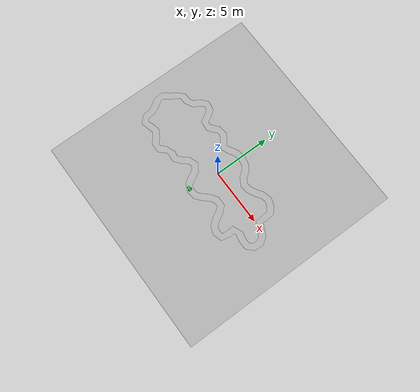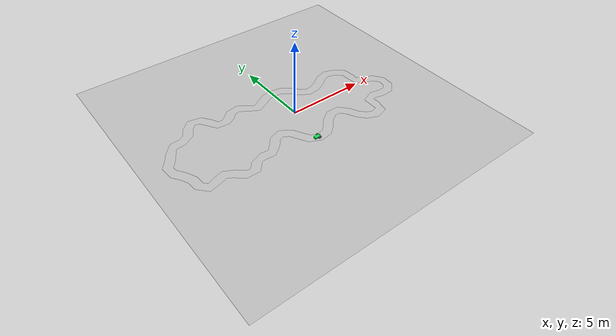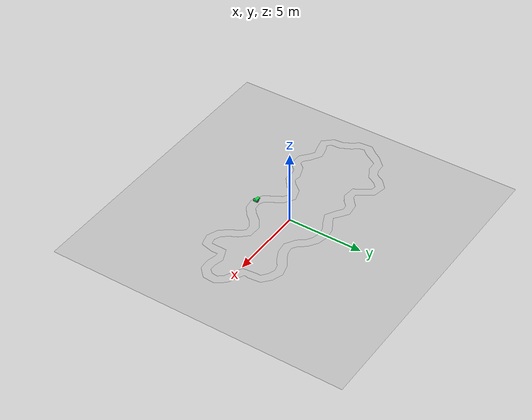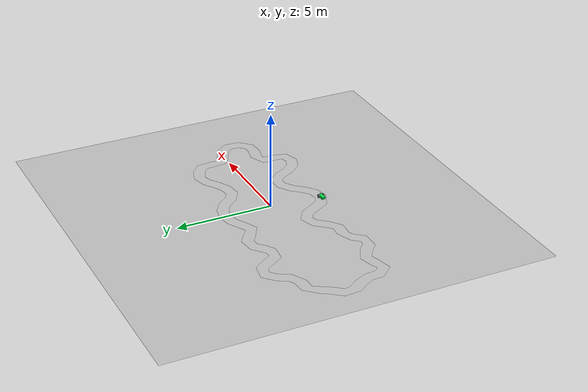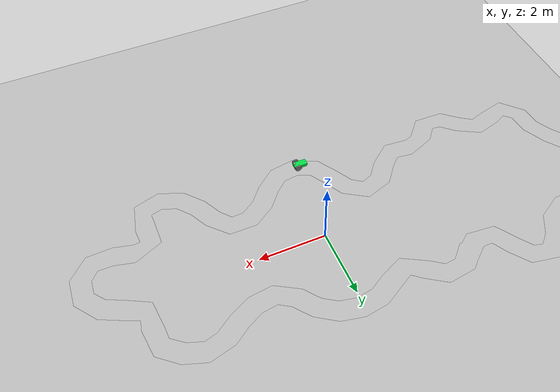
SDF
<?xml version="1.0" ?>
<sdf version="1.5">
	<world name="default">
		<!-- Animated sky with clouds -->
		<scene>
			<shadows>false</shadows>
			<sky>
				<clouds>
					<speed>12</speed>
				</clouds>
			</sky>
		</scene>

		<!-- A global light source -->
		<include>
			<uri>model://sun</uri>
		</include>

		<!-- A ground plane -->
		<include>
			<uri>model://ground_plane_grass</uri>
		</include>

		<!-- A dirt path -->
		<include>
			<uri>model://dirt_path_curves</uri>
			<pose>0.0 0.0 0.001 0.0 0.0 0.0</pose>	<!-- Avoid z-fighting with ground plane -->
		</include>

		<!-- Robot -->
		<include>
			<uri>model://simple_diff</uri>
			<pose>-.38 -2.64 0.001 0.0 0.0 0.0</pose>
		</include>
	</world>
</sdf>

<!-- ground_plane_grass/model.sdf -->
<sdf version='1.6'>
	<model name="ground_plane_grass">
		<static>true</static>
		<link name='ground_plane_grass'>
			<collision name='collision'>
				<geometry>
					<mesh>
						<uri>model://ground_plane_grass/ground_plane_grass.dae</uri>
					</mesh>
				</geometry>
				<surface>
					<friction>
						<ode>
							<mu>100</mu>
							<mu2>50</mu2>
						</ode>
					</friction>
				</surface>
			</collision>

			<visual name='visual'>
				<cast_shadows>false</cast_shadows>
				<geometry>
					<mesh>
						<uri>model://ground_plane_grass/ground_plane_grass.dae</uri>
					</mesh>
				</geometry>
			</visual>
		</link>
	</model>
</sdf>

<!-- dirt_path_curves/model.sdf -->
<sdf version='1.6'>
  <model name="dirt_path_curves">
	<static>true</static>
	<link name='path'>
		<collision name='collision'>
			<geometry>
				<mesh>
					<uri>model://dirt_path_curves/dirt_path_curves.dae</uri>
				</mesh>
			</geometry>
		</collision>

		<visual name='visual'>
			<cast_shadows>false</cast_shadows>
			<geometry>
				<mesh>
					<uri>model://dirt_path_curves/dirt_path_curves.dae</uri>
				</mesh>
			</geometry>
		</visual>
	</link>
  </model>
</sdf>

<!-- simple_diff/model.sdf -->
<sdf version='1.4'>
	<!-- http://gazebosim.org/tutorials?tut=build_robot&cat=build_robot -->
	<model name="simple_diff">
		<static>false</static>

		<link name='chassis'>
			<pose>0 0 .1 0 0 0</pose>

			<inertial>
				<mass>5</mass>
				<pose>-.1 0 -.1 0 0 0</pose>
			</inertial>

			<collision name='collision'>
				<geometry>
				<box>
					<size>.4 .2 .1</size>
				</box>
				</geometry>
			</collision>

			<visual name='visual'>
				<geometry>
				<box>
					<size>.4 .2 .1</size>
				</box>
				</geometry>
				<material>
					<ambient>0.5 0.5 0.5 1</ambient>
					<diffuse>0.0 0.85 0.25 1</diffuse>
					<specular>0 0 0 0</specular>
					<emissive>0 0 0 1</emissive>
				</material>
			</visual>

			<collision name='caster_collision'>
				<pose>-0.15 0 -0.05 0 0 0</pose>
				<geometry>
				<sphere>
					<radius>.05</radius>
				</sphere>
				</geometry>

				<surface>
					<friction>
						<ode>
							<mu>0</mu>
							<mu2>0</mu2>
							<slip1>1.0</slip1>
							<slip2>1.0</slip2>
						</ode>
					</friction>
				</surface>
			</collision>

			<visual name='caster_visual'>
				<pose>-0.15 0 -0.05 0 0 0</pose>
				<geometry>
					<sphere>
					<radius>.05</radius>
					</sphere>
				</geometry>
			</visual>
		</link>

		<link name="left_wheel">
			<pose>0.1 0.13 0.1 0 1.5707 1.5707</pose>
			<collision name="collision">
				<geometry>
					<cylinder>
						<radius>.1</radius>
						<length>.05</length>
					</cylinder>
				</geometry>
			</collision>
			<visual name="visual">
				<geometry>
					<cylinder>
						<radius>.1</radius>
						<length>.05</length>
					</cylinder>
				</geometry>
				<material>
					<ambient>0.35 0.35 0.35 1</ambient>
					<diffuse>0.45 0.45 0.45 1</diffuse>
					<specular>0 0 0 0</specular>
					<emissive>0 0 0 1</emissive>
				</material>
			</visual>
		</link>

		<link name="right_wheel">
			<pose>0.1 -0.13 0.1 0 1.5707 1.5707</pose>
			<collision name="collision">
				<geometry>
					<cylinder>
						<radius>.1</radius>
						<length>.05</length>
					</cylinder>
				</geometry>
			</collision>
			<visual name="visual">
				<geometry>
					<cylinder>
						<radius>.1</radius>
						<length>.05</length>
					</cylinder>
				</geometry>
				<material>
					<ambient>0.35 0.35 0.35 1</ambient>
					<diffuse>0.45 0.45 0.45 1</diffuse>
					<specular>0 0 0 0</specular>
					<emissive>0 0 0 1</emissive>
				</material>
			</visual>
		</link>

		<joint type="revolute" name="left_wheel_hinge">
			<pose>0 0 -0.03 0 0 0</pose>
			<child>left_wheel</child>
			<parent>chassis</parent>
			<axis>
				<xyz>0 1 0</xyz>
			</axis>
		</joint>

		<joint type="revolute" name="right_wheel_hinge">
			<pose>0 0 0.03 0 0 0</pose>
			<child>right_wheel</child>
			<parent>chassis</parent>
			<axis>
				<xyz>0 1 0</xyz>
			</axis>
		</joint>

		<link name="camera_link">
			<gravity>false</gravity>
			<pose>.175 0 .2 0 0.1 0</pose>
			<inertial>
				<mass>0.1</mass>
			</inertial>
			<visual name="visual">
				<geometry>
					<box>
						<size>0.05 0.05 0.05</size>
					</box>
				</geometry>
				<material>
					<ambient>0.75 0.75 0.75 1</ambient>
					<diffuse>0.8 0.85 0.8 1</diffuse>
					<specular>0 0 0 0</specular>
					<emissive>0 0 0 1</emissive>
				</material>
			</visual>
			<sensor name="camera" type="camera">
				<camera>
					<horizontal_fov>2.0</horizontal_fov>
					<image>
						<width>224</width>
						<height>224</height>
						<format>R8G8B8</format>
					</image>

				</camera>
				<always_on>1</always_on>
				<update_rate>10</update_rate>
				<visualize>true</visualize>
			</sensor>
		</link>

		<joint name="camera_joint" type="fixed">
			<parent>chassis</parent>
			<child>camera_link</child>
		</joint>
	</model>
</sdf>
